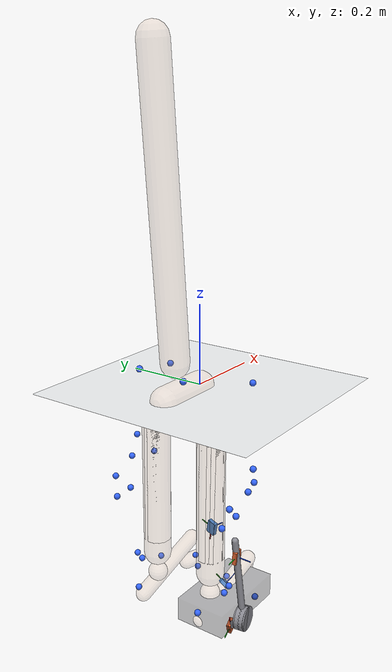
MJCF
<mujoco model="AB23">
  <compiler angle="radian" autolimits="true"/>
  <option timestep="0.005" gravity="0 0 -9.81"><flag contact="disable"/></option>
  <visual><global offwidth="1600" offheight="1200"/>
    <headlight ambient="0.55 0.55 0.55" diffuse="0.6 0.6 0.6"/></visual>
  <default><joint limited="false" damping="0"/><geom contype="0" conaffinity="0"/></default>
  <asset>
    <texture name="grid" type="2d" builtin="checker" rgb1="0.75 0.77 0.8" rgb2="0.85 0.87 0.9" width="512" height="512"/>
    <material name="grid" texture="grid" texrepeat="2 2" texuniform="true"/>
    <material name="skin" rgba="0.85 0.72 0.62 0.28"/>
  </asset>
  <worldbody>
    <light pos="0 0 4" dir="0 0 -1"/>
    <geom name="floor" type="plane" size="0 0 0.05" material="grid"/>
    <body name="pelvis" pos="0 0 0" quat="1 0 0 0">
      <joint name="pelvis_tx" type="slide" axis="1 0 0"/>
      <joint name="pelvis_ty" type="slide" axis="0 0 1"/>
      <joint name="pelvis_tz" type="slide" axis="0 -1 0"/>
      <joint name="pelvis_tilt" type="hinge" axis="0 -1 0"/>
      <joint name="pelvis_list" type="hinge" axis="1 0 0"/>
      <joint name="pelvis_rotation" type="hinge" axis="0 0 1"/>
      <inertial pos="-0.069428244 0 0" mass="12.4839" diaginertia="0.12483893 0.12483893 0.12483893"/>
      <geom type="capsule" fromto="0 0 0 -0.13885649 0 0" size="0.035" material="skin" mass="0"/>
      <site name="m_R_ASIS" pos="0.040368546 -0.12488615 0.018440229" size="0.008" rgba="0.2 0.4 1 1" group="2"/>
      <site name="m_L_ASIS" pos="0.040872285 0.12025411 0.018730882" size="0.008" rgba="0.2 0.4 1 1" group="2"/>
      <site name="m_L_PSIS" pos="-0.15353043 0.060578444 0.070536663" size="0.008" rgba="0.2 0.4 1 1" group="2"/>
      <site name="m_R_PSIS" pos="-0.15140823 -0.062263557 0.065017875" size="0.008" rgba="0.2 0.4 1 1" group="2"/>
      <body name="femur_r" pos="-0.069428244 -0.081997997 -0.064910989" quat="1 0 0 0">
        <joint name="hip_flexion_r" type="hinge" axis="0 -1 0"/>
        <joint name="hip_adduction_r" type="hinge" axis="1 0 0"/>
        <joint name="hip_rotation_r" type="hinge" axis="0 0 1"/>
        <inertial pos="0 0 -0.17318711" mass="9.8597" diaginertia="0.098596999 0.098596999 0.098596999"/>
        <geom type="capsule" fromto="0 0 0 0 0 -0.34637423" size="0.035" material="skin" mass="0"/>
        <site name="m_R_Thigh_Upper" pos="0.046284272 -0.088179957 -0.10325602" size="0.008" rgba="0.2 0.4 1 1" group="2"/>
        <site name="m_R_Thigh_Front" pos="0.082891285 -0.069582666 -0.15855346" size="0.008" rgba="0.2 0.4 1 1" group="2"/>
        <site name="m_R_Thigh_Rear" pos="0.026810202 -0.087781583 -0.15490495" size="0.008" rgba="0.2 0.4 1 1" group="2"/>
        <site name="m_R_Knee_Lat" pos="-0.0010779302 -0.056418826 -0.40687298" size="0.008" rgba="0.2 0.4 1 1" group="2"/>
        <body name="tibia_r" pos="0 0 0" quat="1 0 0 0">
<geom name="gt_shank_axis_x" type="capsule" size="0.0012" fromto="0.02650 0.01340 -0.28200 0.02769 0.01980 -0.31639" rgba="1 0.1 0.1 1" contype="0" conaffinity="0" mass="0"/>
<geom name="gt_shank_axis_y" type="capsule" size="0.0012" fromto="0.02650 0.01340 -0.28200 0.03402 0.04696 -0.27549" rgba="0.1 0.8 0.1 1" contype="0" conaffinity="0" mass="0"/>
<geom name="gt_shank_axis_z" type="capsule" size="0.0012" fromto="0.02650 0.01340 -0.28200 0.06066 0.00579 -0.28223" rgba="0.1 0.3 1 1" contype="0" conaffinity="0" mass="0"/>
<geom name="exo_shank_axis_x" type="capsule" size="0.0012" fromto="-0.05244 -0.10953 -0.28032 -0.05416 -0.11225 -0.24547" rgba="1 0.1 0.1 1" contype="0" conaffinity="0" mass="0"/>
<geom name="exo_shank_axis_y" type="capsule" size="0.0012" fromto="-0.05244 -0.10953 -0.28032 -0.08726 -0.11247 -0.28227" rgba="0.1 0.8 0.1 1" contype="0" conaffinity="0" mass="0"/>
<geom name="exo_shank_axis_z" type="capsule" size="0.0012" fromto="-0.05244 -0.10953 -0.28032 -0.04936 -0.14430 -0.28288" rgba="0.1 0.3 1 1" contype="0" conaffinity="0" mass="0"/>
<geom name="encoder_shank" type="cylinder" size="0.03 0.012" fromto="-0.03719 -0.13313 -0.44784 -0.03981 -0.10927 -0.44816" rgba="0.55 0.55 0.58 1" contype="0" conaffinity="0" mass="0"/>
<geom name="strut_shank" type="capsule" size="0.008" fromto="-0.03850 -0.12120 -0.44800 -0.05592 -0.10661 -0.23840" rgba="0.55 0.55 0.58 1" contype="0" conaffinity="0" mass="0"/>
          <joint name="knee_r_translation1" type="slide" axis="1 0 0"/>
          <joint name="knee_r_translation2" type="slide" axis="0 0 1"/>
          <joint name="knee_angle_r" type="hinge" axis="0 -1 0"/>
          <inertial pos="0 0 -0.19453144" mass="3.93004" diaginertia="0.03930036 0.03930036 0.03930036"/>
          <geom type="capsule" fromto="0 0 0 0 0 -0.38906287" size="0.035" material="skin" mass="0"/>
          <site name="m_R_Shank_Upper" pos="-0.050875375 -0.086899636 -0.16603889" size="0.008" rgba="0.2 0.4 1 1" group="2"/>
          <site name="m_R_Shank_Front" pos="-0.0086404002 -0.078028718 -0.2060585" size="0.008" rgba="0.2 0.4 1 1" group="2"/>
          <site name="m_R_Shank_Rear" pos="-0.060730749 -0.073438538 -0.21541173" size="0.008" rgba="0.2 0.4 1 1" group="2"/>
          <site name="m_R_Ankle_Lat" pos="-0.0074067719 -0.047138427 -0.42668108" size="0.008" rgba="0.2 0.4 1 1" group="2"/>
          <site name="gt_shank_imu" type="box" size="0.016 0.012 0.005" pos="0.0265 0.0134 -0.282" quat="0.70470107 0.14306306 0.69483866 -0.011339936" rgba="0.16 0.47 0.84 1" group="1"/>
          <site name="exo_shank_imu" type="box" size="0.016 0.012 0.005" pos="-0.052438 -0.109531 -0.280321" quat="0.44544115 0.52630374 -0.50946367 0.51481388" rgba="0.92 0.41 0.20 1" group="1"/>
          <body name="talus_r" pos="0 0 -0.44803705" quat="1 0 0 0">
            <joint name="ankle_angle_r" type="hinge" axis="-0.10501355 -0.97912632 -0.17402245"/>
            <inertial pos="0 0 0" mass="0.106002" diaginertia="0.0010600232 0.0010600232 0.0010600232"/>
            <geom type="sphere" size="0.025" material="skin" mass="0"/>
            <body name="calcn_r" pos="-0.050815737 -0.0082522173 -0.043709661" quat="1 0 0 0">
<geom name="gt_foot_axis_x" type="capsule" size="0.0012" fromto="0.12670 0.01250 0.02550 0.15340 0.01501 0.00301" rgba="1 0.1 0.1 1" contype="0" conaffinity="0" mass="0"/>
<geom name="gt_foot_axis_y" type="capsule" size="0.0012" fromto="0.12670 0.01250 0.02550 0.13404 0.04444 0.03777" rgba="0.1 0.8 0.1 1" contype="0" conaffinity="0" mass="0"/>
<geom name="gt_foot_axis_z" type="capsule" size="0.0012" fromto="0.12670 0.01250 0.02550 0.14811 -0.00158 0.04934" rgba="0.1 0.3 1 1" contype="0" conaffinity="0" mass="0"/>
<geom name="exo_foot_axis_x" type="capsule" size="0.0012" fromto="0.03094 -0.06702 -0.00917 0.01743 -0.07226 0.02269" rgba="1 0.1 0.1 1" contype="0" conaffinity="0" mass="0"/>
<geom name="exo_foot_axis_y" type="capsule" size="0.0012" fromto="0.03094 -0.06702 -0.00917 -0.00073 -0.07160 -0.02336" rgba="0.1 0.8 0.1 1" contype="0" conaffinity="0" mass="0"/>
<geom name="exo_foot_axis_z" type="capsule" size="0.0012" fromto="0.03094 -0.06702 -0.00917 0.03724 -0.10132 -0.01215" rgba="0.1 0.3 1 1" contype="0" conaffinity="0" mass="0"/>
<geom name="encoder_foot" type="cylinder" size="0.03 0.012" fromto="0.01504 -0.12468 0.04340 0.00956 -0.10132 0.04400" rgba="0.55 0.55 0.58 1" contype="0" conaffinity="0" mass="0"/>
<geom name="strut_foot" type="capsule" size="0.008" fromto="0.01230 -0.11300 0.04370 0.03094 -0.06702 -0.00917" rgba="0.55 0.55 0.58 1" contype="0" conaffinity="0" mass="0"/>
<geom name="shoe" type="box" pos="0.09841 -0.00592 0.01183" size="0.11209 0.06539 0.03000" rgba="0.15 0.15 0.18 0.35" contype="0" conaffinity="0" mass="0"/>
              <joint name="subtalar_angle_r" type="hinge" axis="0.78717961 0.12094949 0.60474746"/>
              <inertial pos="0.10578844 0 0.031736531" mass="1.32503" diaginertia="0.01325029 0.01325029 0.01325029"/>
              <geom type="capsule" fromto="0 0 0 0.21157687 0 0.063473061" size="0.02" material="skin" mass="0"/>
              <site name="m_R_Heel" pos="-0.020674025 -0.0050393938 0.030845268" size="0.008" rgba="0.2 0.4 1 1" group="2"/>
              <site name="m_R_Toe_Lat" pos="0.15078891 -0.062180385 0.003788944" size="0.008" rgba="0.2 0.4 1 1" group="2"/>
              <site name="m_R_Toe_Med" pos="0.18707947 0.048598651 0.0018315767" size="0.008" rgba="0.2 0.4 1 1" group="2"/>
              <site name="m_R_Toe_Tip" pos="0.20050072 0.023972581 0.023731219" size="0.008" rgba="0.2 0.4 1 1" group="2"/>
              <site name="gt_foot_imu" type="box" size="0.016 0.012 0.005" pos="0.1267 0.0125 0.0255" quat="0.91605817 0.20549636 0.34232517 -0.037711381" rgba="0.16 0.47 0.84 1" group="1"/>
              <site name="exo_foot_imu" type="box" size="0.016 0.012 0.005" pos="0.030942 -0.067018 -0.009172" quat="0.31543827 0.45551698 -0.57881758 0.59830861" rgba="0.92 0.41 0.20 1" group="1"/>
              <body name="toes_r" pos="0.18914972 -0.0011425151 -0.0021157687" quat="1 0 0 0">
                <joint name="mtp_angle_r" type="hinge" axis="-0.5809544 -0.81393611 0"/>
                <inertial pos="0.036602799 0.018512976 0.0063473061" mass="0.229601" diaginertia="0.0022960103 0.0022960103 0.0022960103"/>
                <geom type="capsule" fromto="0 0 0 0.073205597 0.037025952 0.012694612" size="0.02" material="skin" mass="0"/>
              </body>
            </body>
          </body>
        </body>
      </body>
      <body name="femur_l" pos="-0.069428244 0.081997997 -0.064910989" quat="1 0 0 0">
        <joint name="hip_flexion_l" type="hinge" axis="0 -1 0"/>
        <joint name="hip_adduction_l" type="hinge" axis="-1 0 0"/>
        <joint name="hip_rotation_l" type="hinge" axis="0 0 -1"/>
        <inertial pos="0 0 -0.17318711" mass="9.8597" diaginertia="0.098596999 0.098596999 0.098596999"/>
        <geom type="capsule" fromto="0 0 0 0 0 -0.34637423" size="0.035" material="skin" mass="0"/>
        <site name="m_L_Thigh_Upper" pos="0.047573506 0.10022568 -0.10473148" size="0.008" rgba="0.2 0.4 1 1" group="2"/>
        <site name="m_L_Thigh_Front" pos="0.086147237 0.07594333 -0.16031561" size="0.008" rgba="0.2 0.4 1 1" group="2"/>
        <site name="m_L_Thigh_Rear" pos="0.028430691 0.1030257 -0.15942893" size="0.008" rgba="0.2 0.4 1 1" group="2"/>
        <site name="m_L_Knee_Lat" pos="-0.00071073541 0.067123063 -0.41795977" size="0.008" rgba="0.2 0.4 1 1" group="2"/>
        <body name="tibia_l" pos="0 0 0" quat="1 0 0 0">
          <joint name="knee_l_translation1" type="slide" axis="1 0 0"/>
          <joint name="knee_l_translation2" type="slide" axis="0 0 1"/>
          <joint name="knee_angle_l" type="hinge" axis="0 -1 0"/>
          <inertial pos="0 0 -0.19453144" mass="3.93004" diaginertia="0.03930036 0.03930036 0.03930036"/>
          <geom type="capsule" fromto="0 0 0 0 0 -0.38906287" size="0.035" material="skin" mass="0"/>
          <site name="m_L_Shank_Upper" pos="-0.041337073 0.099217505 -0.18794544" size="0.008" rgba="0.2 0.4 1 1" group="2"/>
          <site name="m_L_Shank_Front" pos="-0.0032141405 0.083623223 -0.23178615" size="0.008" rgba="0.2 0.4 1 1" group="2"/>
          <site name="m_L_Shank_Rear" pos="-0.056306866 0.08334695 -0.23443515" size="0.008" rgba="0.2 0.4 1 1" group="2"/>
          <site name="m_L_Ankle_Lat" pos="-0.0030960733 0.050032091 -0.42718921" size="0.008" rgba="0.2 0.4 1 1" group="2"/>
          <body name="talus_l" pos="0 0 -0.44803705" quat="1 0 0 0">
            <joint name="ankle_angle_l" type="hinge" axis="0.10501355 -0.97912632 0.17402245"/>
            <inertial pos="0 0 0" mass="0.106002" diaginertia="0.0010600232 0.0010600232 0.0010600232"/>
            <geom type="sphere" size="0.025" material="skin" mass="0"/>
            <body name="calcn_l" pos="-0.050815737 0.0082522173 -0.043709661" quat="1 0 0 0">
              <joint name="subtalar_angle_l" type="hinge" axis="-0.78717961 0.12094949 -0.60474746"/>
              <inertial pos="0.10578844 0 0.031736531" mass="1.32503" diaginertia="0.01325029 0.01325029 0.01325029"/>
              <geom type="capsule" fromto="0 0 0 0.21157687 0 0.063473061" size="0.02" material="skin" mass="0"/>
              <site name="m_L_Heel" pos="-0.019202582 -0.00095586632 0.030266967" size="0.008" rgba="0.2 0.4 1 1" group="2"/>
              <site name="m_L_Toe_Lat" pos="0.158269 0.065780614 0.0071667674" size="0.008" rgba="0.2 0.4 1 1" group="2"/>
              <site name="m_L_Toe_Med" pos="0.17760729 -0.044735494 0.0054345088" size="0.008" rgba="0.2 0.4 1 1" group="2"/>
              <site name="m_L_Toe_Tip" pos="0.19455893 -0.025070284 0.024113792" size="0.008" rgba="0.2 0.4 1 1" group="2"/>
              <body name="toes_l" pos="0.18914972 0.0011425151 -0.0021157687" quat="1 0 0 0">
                <joint name="mtp_angle_l" type="hinge" axis="0.5809544 -0.81393611 0"/>
                <inertial pos="0.036602799 -0.018512976 0.0063473061" mass="0.229601" diaginertia="0.0022960103 0.0022960103 0.0022960103"/>
                <geom type="capsule" fromto="0 0 0 0.073205597 -0.037025952 0.012694612" size="0.02" material="skin" mass="0"/>
              </body>
            </body>
          </body>
        </body>
      </body>
      <body name="torso" pos="-0.098888602 0 0.080033973" quat="1 0 0 0">
        <joint name="lumbar_extension" type="hinge" axis="0 -1 0"/>
        <joint name="lumbar_bending" type="hinge" axis="1 0 0"/>
        <joint name="lumbar_rotation" type="hinge" axis="0 0 1"/>
        <inertial pos="-0.032683631 0 0.34862539" mass="36.2916" diaginertia="0.36291591 0.36291591 0.36291591"/>
        <geom type="capsule" fromto="0 0 0 -0.065367261 0 0.69725079" size="0.035" material="skin" mass="0"/>
      </body>
    </body>
  </worldbody>
  <sensor>
<accelerometer name="gt_foot_imu_acc" site="gt_foot_imu"/>
<gyro name="gt_foot_imu_gyr" site="gt_foot_imu"/>
<accelerometer name="exo_foot_imu_acc" site="exo_foot_imu"/>
<gyro name="exo_foot_imu_gyr" site="exo_foot_imu"/>
<accelerometer name="gt_shank_imu_acc" site="gt_shank_imu"/>
<gyro name="gt_shank_imu_gyr" site="gt_shank_imu"/>
<accelerometer name="exo_shank_imu_acc" site="exo_shank_imu"/>
<gyro name="exo_shank_imu_gyr" site="exo_shank_imu"/>
</sensor>
</mujoco>
